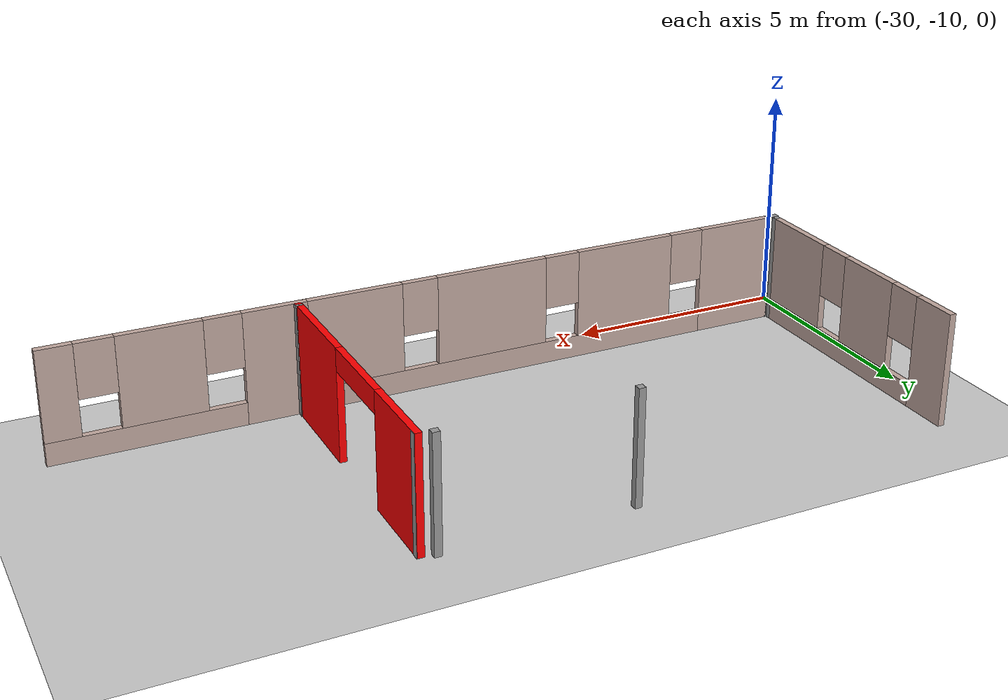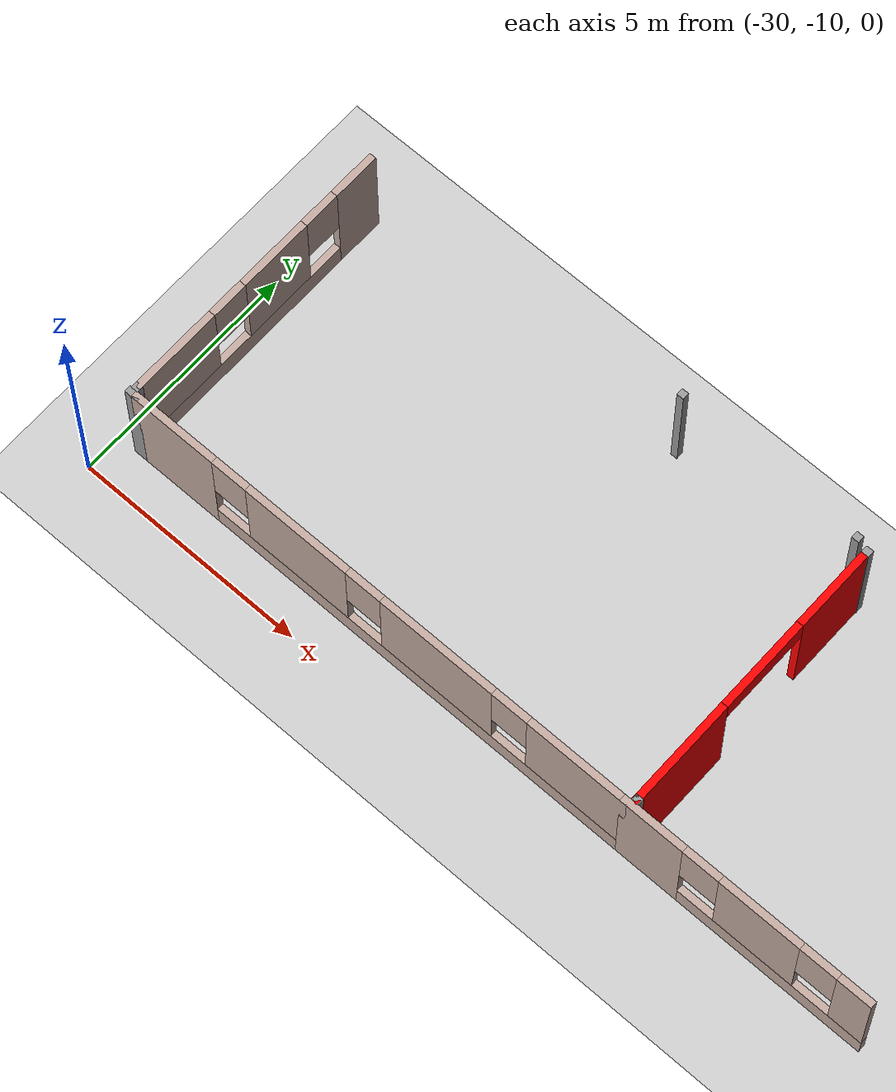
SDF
<sdf version="1.6">
 <world name="default">
  <model name="ground_plane">
   <static>1</static>
   <link name="link">
    <collision name="collision">
     <geometry><plane><normal>0 0 1</normal><size>100 100</size></plane></geometry>
     <surface><friction><ode><mu>100</mu><mu2>50</mu2></ode></friction></surface>
    </collision>
    <visual name="visual">
     <cast_shadows>0</cast_shadows>
     <geometry><plane><normal>0 0 1</normal><size>100 100</size></plane></geometry>
     <material>
      <script><uri>file://media/materials/scripts/gazebo.material</uri><name>Gazebo/Grey</name></script>
     </material>
    </visual>
   </link>
  </model>
  <model name="FloorPlan">
   <pose>0.30947 -3.19534 0 0 -0 0</pose>
   <link name="Wall_16">
    <collision name="Wall_16_Collision">
     <geometry><box><size>0.16 0.15 2.5</size></box></geometry>
     <pose>0 0 1.25 0 -0 0</pose>
    </collision>
    <visual name="Wall_16_Visual">
     <pose>0 0 1.25 0 -0 0</pose>
     <geometry><box><size>0.16 0.15 2.5</size></box></geometry>
     <material>
      <script><uri>file://media/materials/scripts/gazebo.material</uri><name>Gazebo/Grey</name></script>
      <ambient>1 1 1 1</ambient>
     </material>
     <meta><layer>0</layer></meta>
    </visual>
    <pose>-18.2024 0.299775 0 0 -0 0</pose>
   </link>
   <link name="Wall_42">
    <collision name="Wall_42_Collision">
     <geometry><box><size>0.15 0.15 2.5</size></box></geometry>
     <pose>0 0 1.25 0 -0 0</pose>
    </collision>
    <visual name="Wall_42_Visual">
     <pose>0 0 1.25 0 -0 0</pose>
     <geometry><box><size>0.15 0.15 2.5</size></box></geometry>
     <material>
      <script><uri>file://media/materials/scripts/gazebo.material</uri><name>Gazebo/Grey</name></script>
      <ambient>1 1 1 1</ambient>
     </material>
     <meta><layer>0</layer></meta>
    </visual>
    <pose>-22.5495 0.470897 0 0 -0 0</pose>
   </link>
   <link name="Wall_47">
    <collision name="Wall_47_Collision">
     <geometry><box><size>0.3 0.15 2.5</size></box></geometry>
     <pose>0 0 1.25 0 -0 0</pose>
    </collision>
    <visual name="Wall_47_Visual">
     <pose>0 0 1.25 0 -0 0</pose>
     <geometry><box><size>0.3 0.15 2.5</size></box></geometry>
     <material>
      <script><uri>file://media/materials/scripts/gazebo.material</uri><name>Gazebo/Grey</name></script>
      <ambient>1 1 1 1</ambient>
     </material>
     <meta><layer>0</layer></meta>
    </visual>
    <pose>-29.7609 -5.93407 0 0 -0 0</pose>
   </link>
   <link name="Wall_48">
    <pose>-24.0109 -5.93407 0 0 -0 0</pose>
    <visual name="Wall_48_Visual_0">
     <pose>-4.78369 0 1.25 0 -0 0</pose>
     <geometry><box><size>1.93261 0.15 2.5</size></box></geometry>
     <material>
      <script><uri>file://media/materials/scripts/gazebo.material</uri><name>Gazebo/Grey</name></script>
      <ambient>0.760784 0.662745 0.627451 1</ambient>
     </material>
     <meta><layer>0</layer></meta>
    </visual>
    <collision name="Wall_48_Collision_0">
     <geometry><box><size>1.93261 0.15 2.5</size></box></geometry>
     <pose>-4.78369 0 1.25 0 -0 0</pose>
    </collision>
    <visual name="Wall_48_Visual_1">
     <pose>0.966306 0 0.25 0 -0 0</pose>
     <geometry><box><size>9.56739 0.15 0.5</size></box></geometry>
     <material>
      <script><uri>file://media/materials/scripts/gazebo.material</uri><name>Gazebo/Grey</name></script>
      <ambient>0.760784 0.662745 0.627451 1</ambient>
     </material>
     <meta><layer>0</layer></meta>
    </visual>
    <collision name="Wall_48_Collision_1">
     <geometry><box><size>9.56739 0.15 0.5</size></box></geometry>
     <pose>0.966306 0 0.25 0 -0 0</pose>
    </collision>
    <visual name="Wall_48_Visual_2">
     <pose>-1.83906 0 1.5 0 -0 0</pose>
     <geometry><box><size>2.35665 0.15 2</size></box></geometry>
     <material>
      <script><uri>file://media/materials/scripts/gazebo.material</uri><name>Gazebo/Grey</name></script>
      <ambient>0.760784 0.662745 0.627451 1</ambient>
     </material>
     <meta><layer>0</layer></meta>
    </visual>
    <collision name="Wall_48_Collision_2">
     <geometry><box><size>2.35665 0.15 2</size></box></geometry>
     <pose>-1.83906 0 1.5 0 -0 0</pose>
    </collision>
    <visual name="Wall_48_Visual_3">
     <pose>1.42459 0 1.5 0 -0 0</pose>
     <geometry><box><size>2.57066 0.15 2</size></box></geometry>
     <material>
      <script><uri>file://media/materials/scripts/gazebo.material</uri><name>Gazebo/Grey</name></script>
      <ambient>0.760784 0.662745 0.627451 1</ambient>
     </material>
     <meta><layer>0</layer></meta>
    </visual>
    <collision name="Wall_48_Collision_3">
     <geometry><box><size>2.57066 0.15 2</size></box></geometry>
     <pose>1.42459 0 1.5 0 -0 0</pose>
    </collision>
    <visual name="Wall_48_Visual_4">
     <pose>4.62996 0 1.5 0 -0 0</pose>
     <geometry><box><size>2.24008 0.15 2</size></box></geometry>
     <material>
      <script><uri>file://media/materials/scripts/gazebo.material</uri><name>Gazebo/Grey</name></script>
      <ambient>0.760784 0.662745 0.627451 1</ambient>
     </material>
     <meta><layer>0</layer></meta>
    </visual>
    <collision name="Wall_48_Collision_4">
     <geometry><box><size>2.24008 0.15 2</size></box></geometry>
     <pose>4.62996 0 1.5 0 -0 0</pose>
    </collision>
    <visual name="Wall_48_Visual_5">
     <pose>-3.41739 0 1.9 0 -0 0</pose>
     <geometry><box><size>0.8 0.15 1.2</size></box></geometry>
     <material>
      <script><uri>file://media/materials/scripts/gazebo.material</uri><name>Gazebo/Grey</name></script>
      <ambient>0.760784 0.662745 0.627451 1</ambient>
     </material>
     <meta><layer>0</layer></meta>
    </visual>
    <collision name="Wall_48_Collision_5">
     <geometry><box><size>0.8 0.15 1.2</size></box></geometry>
     <pose>-3.41739 0 1.9 0 -0 0</pose>
    </collision>
    <visual name="Wall_48_Visual_6">
     <pose>-0.26074 0 1.9 0 -0 0</pose>
     <geometry><box><size>0.8 0.15 1.2</size></box></geometry>
     <material>
      <script><uri>file://media/materials/scripts/gazebo.material</uri><name>Gazebo/Grey</name></script>
      <ambient>0.760784 0.662745 0.627451 1</ambient>
     </material>
     <meta><layer>0</layer></meta>
    </visual>
    <collision name="Wall_48_Collision_6">
     <geometry><box><size>0.8 0.15 1.2</size></box></geometry>
     <pose>-0.26074 0 1.9 0 -0 0</pose>
    </collision>
    <visual name="Wall_48_Visual_7">
     <pose>3.10992 0 1.9 0 -0 0</pose>
     <geometry><box><size>0.8 0.15 1.2</size></box></geometry>
     <material>
      <script><uri>file://media/materials/scripts/gazebo.material</uri><name>Gazebo/Grey</name></script>
      <ambient>0.760784 0.662745 0.627451 1</ambient>
     </material>
     <meta><layer>0</layer></meta>
    </visual>
    <collision name="Wall_48_Collision_7">
     <geometry><box><size>0.8 0.15 1.2</size></box></geometry>
     <pose>3.10992 0 1.9 0 -0 0</pose>
    </collision>
   </link>
   <link name="Wall_49">
    <pose>-15.6609 -5.93407 0 0 -0 0</pose>
    <visual name="Wall_49_Visual_0">
     <pose>-2.05494 0 1.25 0 -0 0</pose>
     <geometry><box><size>1.39012 0.15 2.5</size></box></geometry>
     <material>
      <script><uri>file://media/materials/scripts/gazebo.material</uri><name>Gazebo/Grey</name></script>
      <ambient>0.760784 0.662745 0.627451 1</ambient>
     </material>
     <meta><layer>0</layer></meta>
    </visual>
    <collision name="Wall_49_Collision_0">
     <geometry><box><size>1.39012 0.15 2.5</size></box></geometry>
     <pose>-2.05494 0 1.25 0 -0 0</pose>
    </collision>
    <visual name="Wall_49_Visual_1">
     <pose>0.69506 0 0.25 0 -0 0</pose>
     <geometry><box><size>4.10988 0.15 0.5</size></box></geometry>
     <material>
      <script><uri>file://media/materials/scripts/gazebo.material</uri><name>Gazebo/Grey</name></script>
      <ambient>0.760784 0.662745 0.627451 1</ambient>
     </material>
     <meta><layer>0</layer></meta>
    </visual>
    <collision name="Wall_49_Collision_1">
     <geometry><box><size>4.10988 0.15 0.5</size></box></geometry>
     <pose>0.69506 0 0.25 0 -0 0</pose>
    </collision>
    <visual name="Wall_49_Visual_2">
     <pose>0.324179 0 1.5 0 -0 0</pose>
     <geometry><box><size>1.76812 0.15 2</size></box></geometry>
     <material>
      <script><uri>file://media/materials/scripts/gazebo.material</uri><name>Gazebo/Grey</name></script>
      <ambient>0.760784 0.662745 0.627451 1</ambient>
     </material>
     <meta><layer>0</layer></meta>
    </visual>
    <collision name="Wall_49_Collision_2">
     <geometry><box><size>1.76812 0.15 2</size></box></geometry>
     <pose>0.324179 0 1.5 0 -0 0</pose>
    </collision>
    <visual name="Wall_49_Visual_3">
     <pose>2.37912 0 1.5 0 -0 0</pose>
     <geometry><box><size>0.741762 0.15 2</size></box></geometry>
     <material>
      <script><uri>file://media/materials/scripts/gazebo.material</uri><name>Gazebo/Grey</name></script>
      <ambient>0.760784 0.662745 0.627451 1</ambient>
     </material>
     <meta><layer>0</layer></meta>
    </visual>
    <collision name="Wall_49_Collision_3">
     <geometry><box><size>0.741762 0.15 2</size></box></geometry>
     <pose>2.37912 0 1.5 0 -0 0</pose>
    </collision>
    <visual name="Wall_49_Visual_4">
     <pose>-0.959881 0 1.9 0 -0 0</pose>
     <geometry><box><size>0.8 0.15 1.2</size></box></geometry>
     <material>
      <script><uri>file://media/materials/scripts/gazebo.material</uri><name>Gazebo/Grey</name></script>
      <ambient>0.760784 0.662745 0.627451 1</ambient>
     </material>
     <meta><layer>0</layer></meta>
    </visual>
    <collision name="Wall_49_Collision_4">
     <geometry><box><size>0.8 0.15 1.2</size></box></geometry>
     <pose>-0.959881 0 1.9 0 -0 0</pose>
    </collision>
    <visual name="Wall_49_Visual_5">
     <pose>1.60824 0 1.9 0 -0 0</pose>
     <geometry><box><size>0.8 0.15 1.2</size></box></geometry>
     <material>
      <script><uri>file://media/materials/scripts/gazebo.material</uri><name>Gazebo/Grey</name></script>
      <ambient>0.760784 0.662745 0.627451 1</ambient>
     </material>
     <meta><layer>0</layer></meta>
    </visual>
    <collision name="Wall_49_Collision_5">
     <geometry><box><size>0.8 0.15 1.2</size></box></geometry>
     <pose>1.60824 0 1.9 0 -0 0</pose>
    </collision>
   </link>
   <link name="Wall_56">
    <pose>-29.8074 -2.75022 0 0 -0 -1.5708</pose>
    <visual name="Wall_56_Visual_0">
     <pose>-2.60494 0 1.25 0 -0 0</pose>
     <geometry><box><size>1.04012 0.15 2.5</size></box></geometry>
     <material>
      <script><uri>file://media/materials/scripts/gazebo.material</uri><name>Gazebo/Grey</name></script>
      <ambient>0.760784 0.662745 0.627451 1</ambient>
     </material>
     <meta><layer>0</layer></meta>
    </visual>
    <collision name="Wall_56_Collision_0">
     <geometry><box><size>1.04012 0.15 2.5</size></box></geometry>
     <pose>-2.60494 0 1.25 0 -0 0</pose>
    </collision>
    <visual name="Wall_56_Visual_1">
     <pose>0.520059 0 0.25 0 -0 0</pose>
     <geometry><box><size>5.20988 0.15 0.5</size></box></geometry>
     <material>
      <script><uri>file://media/materials/scripts/gazebo.material</uri><name>Gazebo/Grey</name></script>
      <ambient>0.760784 0.662745 0.627451 1</ambient>
     </material>
     <meta><layer>0</layer></meta>
    </visual>
    <collision name="Wall_56_Collision_1">
     <geometry><box><size>5.20988 0.15 0.5</size></box></geometry>
     <pose>0.520059 0 0.25 0 -0 0</pose>
    </collision>
    <visual name="Wall_56_Visual_2">
     <pose>-0.481076 0 1.5 0 -0 0</pose>
     <geometry><box><size>1.60761 0.15 2</size></box></geometry>
     <material>
      <script><uri>file://media/materials/scripts/gazebo.material</uri><name>Gazebo/Grey</name></script>
      <ambient>0.760784 0.662745 0.627451 1</ambient>
     </material>
     <meta><layer>0</layer></meta>
    </visual>
    <collision name="Wall_56_Collision_2">
     <geometry><box><size>1.60761 0.15 2</size></box></geometry>
     <pose>-0.481076 0 1.5 0 -0 0</pose>
    </collision>
    <visual name="Wall_56_Visual_3">
     <pose>2.12386 0 1.5 0 -0 0</pose>
     <geometry><box><size>2.00227 0.15 2</size></box></geometry>
     <material>
      <script><uri>file://media/materials/scripts/gazebo.material</uri><name>Gazebo/Grey</name></script>
      <ambient>0.760784 0.662745 0.627451 1</ambient>
     </material>
     <meta><layer>0</layer></meta>
    </visual>
    <collision name="Wall_56_Collision_3">
     <geometry><box><size>2.00227 0.15 2</size></box></geometry>
     <pose>2.12386 0 1.5 0 -0 0</pose>
    </collision>
    <visual name="Wall_56_Visual_4">
     <pose>-1.68488 0 1.9 0 -0 0</pose>
     <geometry><box><size>0.8 0.15 1.2</size></box></geometry>
     <material>
      <script><uri>file://media/materials/scripts/gazebo.material</uri><name>Gazebo/Grey</name></script>
      <ambient>0.760784 0.662745 0.627451 1</ambient>
     </material>
     <meta><layer>0</layer></meta>
    </visual>
    <collision name="Wall_56_Collision_4">
     <geometry><box><size>0.8 0.15 1.2</size></box></geometry>
     <pose>-1.68488 0 1.9 0 -0 0</pose>
    </collision>
    <visual name="Wall_56_Visual_5">
     <pose>0.722731 0 1.9 0 -0 0</pose>
     <geometry><box><size>0.8 0.15 1.2</size></box></geometry>
     <material>
      <script><uri>file://media/materials/scripts/gazebo.material</uri><name>Gazebo/Grey</name></script>
      <ambient>0.760784 0.662745 0.627451 1</ambient>
     </material>
     <meta><layer>0</layer></meta>
    </visual>
    <collision name="Wall_56_Collision_5">
     <geometry><box><size>0.8 0.15 1.2</size></box></geometry>
     <pose>0.722731 0 1.9 0 -0 0</pose>
    </collision>
   </link>
   <link name="Wall_57">
    <collision name="Wall_57_Collision">
     <geometry><box><size>0.15 0.15 2.5</size></box></geometry>
     <pose>0 0 1.25 0 -0 0</pose>
    </collision>
    <visual name="Wall_57_Visual">
     <pose>0 0 1.25 0 -0 0</pose>
     <geometry><box><size>0.15 0.15 2.5</size></box></geometry>
     <material>
      <script><uri>file://media/materials/scripts/gazebo.material</uri><name>Gazebo/Grey</name></script>
      <ambient>1 1 1 1</ambient>
     </material>
     <meta><layer>0</layer></meta>
    </visual>
    <pose>-29.8074 -5.80023 0 0 -0 0</pose>
   </link>
   <link name="Wall_65">
    <pose>-18.2074 -2.75022 0 0 -0 -1.5708</pose>
    <visual name="Wall_65_Visual_0">
     <pose>-2.18266 0 1.25 0 -0 0</pose>
     <geometry><box><size>1.88469 0.15 2.5</size></box></geometry>
     <material>
      <script><uri>file://media/materials/scripts/gazebo.material</uri><name>Gazebo/Grey</name></script>
      <ambient>1 0 0 1</ambient>
     </material>
     <meta><layer>0</layer></meta>
    </visual>
    <collision name="Wall_65_Collision_0">
     <geometry><box><size>1.88469 0.15 2.5</size></box></geometry>
     <pose>-2.18266 0 1.25 0 -0 0</pose>
    </collision>
    <visual name="Wall_65_Visual_1">
     <pose>1.94234 0 1.25 0 -0 0</pose>
     <geometry><box><size>2.36531 0.15 2.5</size></box></geometry>
     <material>
      <script><uri>file://media/materials/scripts/gazebo.material</uri><name>Gazebo/Grey</name></script>
      <ambient>1 0 0 1</ambient>
     </material>
     <meta><layer>0</layer></meta>
    </visual>
    <collision name="Wall_65_Collision_1">
     <geometry><box><size>2.36531 0.15 2.5</size></box></geometry>
     <pose>1.94234 0 1.25 0 -0 0</pose>
    </collision>
    <visual name="Wall_65_Visual_2">
     <pose>-0.240314 0 2.25 0 -0 0</pose>
     <geometry><box><size>2 0.15 0.5</size></box></geometry>
     <material>
      <script><uri>file://media/materials/scripts/gazebo.material</uri><name>Gazebo/Grey</name></script>
      <ambient>1 0 0 1</ambient>
     </material>
     <meta><layer>0</layer></meta>
    </visual>
    <collision name="Wall_65_Collision_2">
     <geometry><box><size>2 0.15 0.5</size></box></geometry>
     <pose>-0.240314 0 2.25 0 -0 0</pose>
    </collision>
   </link>
   <link name="Wall_66">
    <collision name="Wall_66_Collision">
     <geometry><box><size>0.16 0.15 2.5</size></box></geometry>
     <pose>0 0 1.25 0 -0 0</pose>
    </collision>
    <visual name="Wall_66_Visual">
     <pose>0 0 1.25 0 -0 0</pose>
     <geometry><box><size>0.16 0.15 2.5</size></box></geometry>
     <material>
      <script><uri>file://media/materials/scripts/gazebo.material</uri><name>Gazebo/Grey</name></script>
      <ambient>1 1 1 1</ambient>
     </material>
     <meta><layer>0</layer></meta>
    </visual>
    <pose>-18.2024 -5.80023 0 0 -0 0</pose>
   </link>
   <link name="Wall_67">
    <collision name="Wall_67_Collision">
     <geometry><box><size>0.16 0.15 2.5</size></box></geometry>
     <pose>0 0 1.25 0 -0 0</pose>
    </collision>
    <visual name="Wall_67_Visual">
     <pose>0 0 1.25 0 -0 0</pose>
     <geometry><box><size>0.16 0.15 2.5</size></box></geometry>
     <material>
      <script><uri>file://media/materials/scripts/gazebo.material</uri><name>Gazebo/Grey</name></script>
      <ambient>1 1 1 1</ambient>
     </material>
     <meta><layer>0</layer></meta>
    </visual>
    <pose>-18.1924 -5.80023 0 0 -0 0</pose>
   </link>
   <link name="Wall_68">
    <collision name="Wall_68_Collision">
     <geometry><box><size>0.16 0.15 2.5</size></box></geometry>
     <pose>0 0 1.25 0 -0 0</pose>
    </collision>
    <visual name="Wall_68_Visual">
     <pose>0 0 1.25 0 -0 0</pose>
     <geometry><box><size>0.16 0.15 2.5</size></box></geometry>
     <material>
      <script><uri>file://media/materials/scripts/gazebo.material</uri><name>Gazebo/Grey</name></script>
      <ambient>1 1 1 1</ambient>
     </material>
     <meta><layer>0</layer></meta>
    </visual>
    <pose>-18.1924 -5.80023 0 0 -0 3.14159</pose>
   </link>
   <link name="Wall_9">
    <collision name="Wall_9_Collision">
     <geometry><box><size>0.16 0.15 2.5</size></box></geometry>
     <pose>0 0 1.25 0 -0 0</pose>
    </collision>
    <visual name="Wall_9_Visual">
     <pose>0 0 1.25 0 -0 0</pose>
     <geometry><box><size>0.16 0.15 2.5</size></box></geometry>
     <material>
      <script><uri>file://media/materials/scripts/gazebo.material</uri><name>Gazebo/Grey</name></script>
      <ambient>1 1 1 1</ambient>
     </material>
     <meta><layer>0</layer></meta>
    </visual>
    <pose>-18.5024 0.399775 0 0 -0 0</pose>
   </link>
   <static>1</static>
  </model>
 </world>
</sdf>
